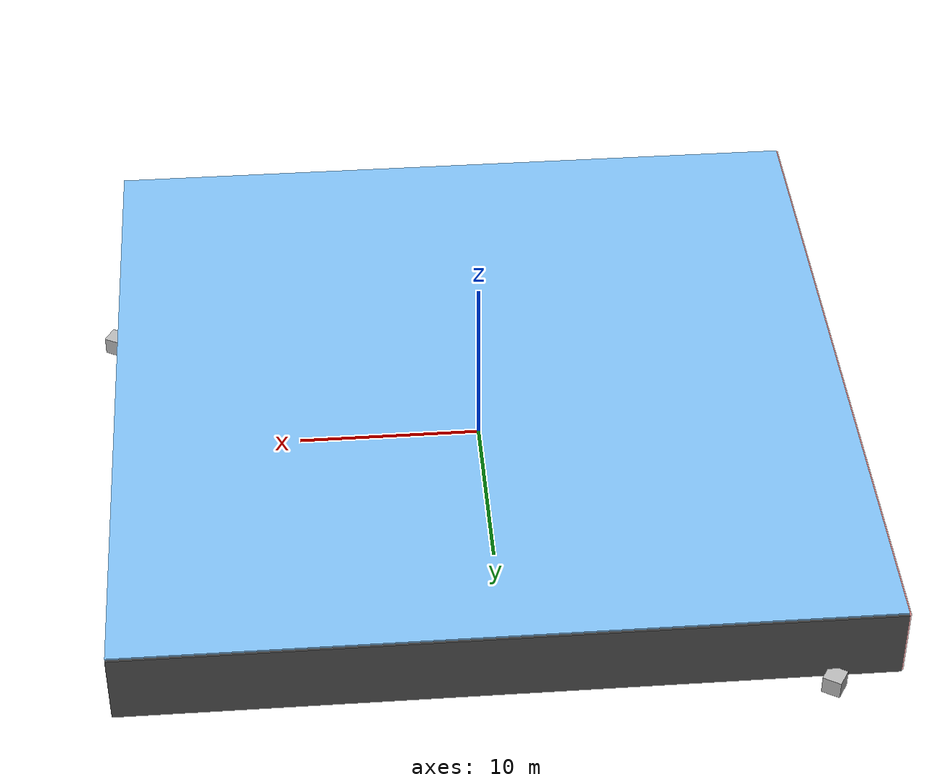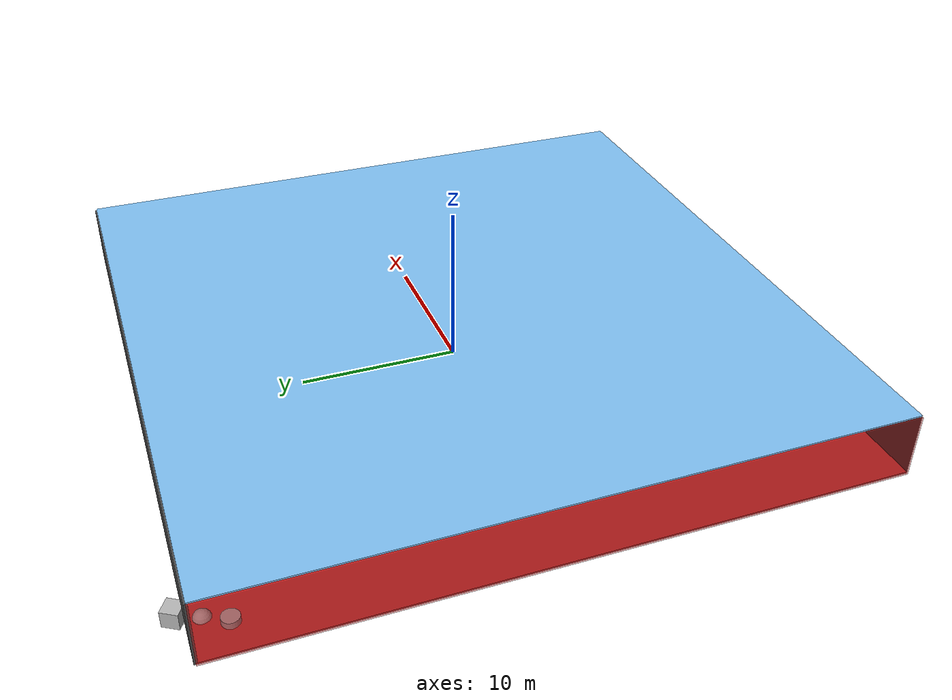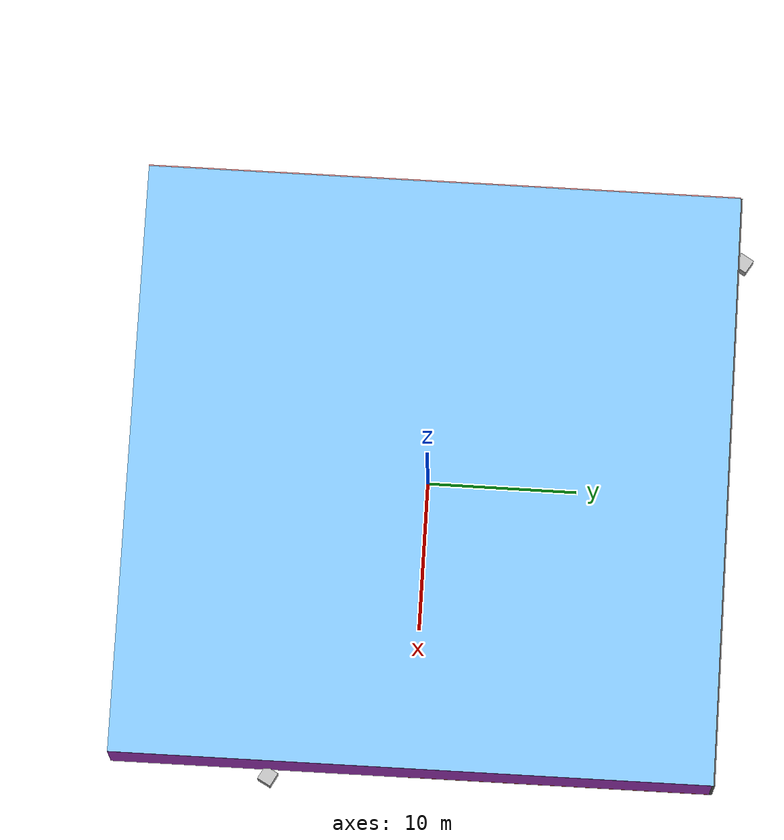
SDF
<sdf version="1.4">
 <world name="default">
  <physics type="ode">
   <max_step_size>0.001</max_step_size>
   <real_time_factor>1</real_time_factor>
   <real_time_update_rate>1000</real_time_update_rate>
   <gravity>0 0 -9.8</gravity>
  </physics>
  <scene><ambient>0.4 0.4 0.4 1</ambient><background>0.7 0.7 0.7 1</background><shadows>1</shadows></scene>
  <model name="Surrounding">
   <static>1</static>
   <link name="Ceiling">
    <collision name="Ceiling_Collision"><geometry><box><size>40 40 0.1</size></box></geometry></collision>
    <visual name="Ceiling_Visual">
     <geometry><box><size>40 40 0.1</size></box></geometry>
     <material>
      <script><uri>file://media/materials/scripts/gazebo.material</uri><name>Gazebo/SkyBlue</name></script>
     </material>
    </visual>
    <pose>0 0 4.05 0 0 0</pose>
   </link>
   <link name="Wall_South">
    <collision name="Wall_South_Collision">
     <geometry><box><size>40 0 4</size></box></geometry>
     <pose>0 0 2 0 -0 0</pose>
    </collision>
    <visual name="Wall_South_Visual">
     <pose>0 0 2 0 -0 0</pose>
     <geometry><box><size>40 0 4</size></box></geometry>
     <material>
      <script><uri>file://media/materials/scripts/gazebo.material</uri><name>Gazebo/FlatBlack</name></script>
     </material>
    </visual>
    <velocity_decay><linear>0</linear><angular>0</angular></velocity_decay>
    <pose>0 -20 0 0 -0 0</pose>
   </link>
   <link name="Wall_East">
    <collision name="Wall_21_Collision">
     <geometry><box><size>40 0 4</size></box></geometry>
     <pose>0 0 2 0 -0 0</pose>
    </collision>
    <visual name="Wall_21_Visual">
     <pose>0 0 2 0 -0 0</pose>
     <geometry><box><size>40 0 4</size></box></geometry>
     <material>
      <script><uri>file://media/materials/scripts/gazebo.material</uri><name>Gazebo/Purple</name></script>
     </material>
    </visual>
    <velocity_decay><linear>0</linear><angular>0</angular></velocity_decay>
    <pose>20 0 0 0 -0 1.5708</pose>
   </link>
   <link name="Wall_North">
    <collision name="Wall_22_Collision">
     <geometry><box><size>40 0.2 4</size></box></geometry>
     <pose>0 0 2 0 -0 0</pose>
    </collision>
    <visual name="Wall_22_Visual">
     <pose>0 0 2 0 -0 0</pose>
     <geometry><box><size>40 0.2 4</size></box></geometry>
     <material>
      <script><uri>file://media/materials/scripts/gazebo.material</uri><name>Gazebo/Road</name></script>
     </material>
    </visual>
    <velocity_decay><linear>0</linear><angular>0</angular></velocity_decay>
    <pose>0 20 0 0 -0 0</pose>
   </link>
   <link name="Wall_West">
    <collision name="Wall_23_Collision">
     <geometry><box><size>40 0.2 4</size></box></geometry>
     <pose>0 0 2 0 -0 0</pose>
    </collision>
    <visual name="Wall_23_Visual">
     <pose>0 0 2 0 -0 0</pose>
     <geometry><box><size>40 0.2 4</size></box></geometry>
     <material>
      <script><uri>file://media/materials/scripts/gazebo.material</uri><name>Gazebo/RedTransparent</name></script>
     </material>
    </visual>
    <velocity_decay><linear>0</linear><angular>0</angular></velocity_decay>
    <pose>-20 0 0 0 0 -1.5708</pose>
   </link>
   <link name="Ground_link">
    <collision name="collision">
     <pose>0 0 .05 0 -0 0</pose>
     <geometry><box><size>40 40 0.1</size></box></geometry>
    </collision>
    <visual name="visual">
     <pose>0 0 .05 0 -0 0</pose>
     <geometry><box><size>40 40 0.1</size></box></geometry>
     <material>
      <script><uri>file://media/materials/scripts/gazebo.material</uri><name>Gazebo/RedBright</name></script>
     </material>
    </visual>
   </link>
   <static>1</static>
  </model>
  <spherical_coordinates>
   <surface_model>EARTH_WGS84</surface_model>
   <latitude_deg>0</latitude_deg>
   <longitude_deg>0</longitude_deg>
   <elevation>0</elevation>
   <heading_deg>0</heading_deg>
  </spherical_coordinates>
  <light name="lightball_0" type="diffuse">
   <diffuse>0.8 0.8 0.8 1</diffuse>
   <specular>0.2 0.2 0.2 1</specular>
   <attenuation>
    <range>100</range>
    <constant>0.7</constant>
    <linear>0.01</linear>
    <quadratic>0.001</quadratic>
   </attenuation>
   <direction>-0.5 0.1 -0.9</direction>
   <pose>1.75545317458 -6.98891561888 2.99959195211 0 0 0</pose>
  </light>
  <light name="lightball_1" type="diffuse">
   <diffuse>0.8 0.8 0.8 1</diffuse>
   <specular>0.2 0.2 0.2 1</specular>
   <attenuation>
    <range>100</range>
    <constant>0.7</constant>
    <linear>0.01</linear>
    <quadratic>0.001</quadratic>
   </attenuation>
   <direction>-0.5 0.1 -0.9</direction>
   <pose>4.08337489634 -16.4697987147 0.7628072348 0 0 0</pose>
  </light>
  <include>
   <uri>model://textured_shapes</uri>
   <pose>-17.2571786528 19.2421158565 0 0 0 2.59614540984</pose>
  </include>
  <include>
   <uri>model://textured_shapes</uri>
   <pose>-14.2632372475 11.6902133046 0 0 0 2.29038281948</pose>
  </include>
  <include><uri>model://cabinet</uri><pose>-13.6020516978 16.2800123274 0 0 0 1.608902143</pose></include>
  <include><uri>model://table</uri><pose>-7.72672636907 -7.70290135 0 0 0 2.64997966866</pose></include>
  <include><uri>model://cabinet</uri><pose>-9.25422342413 17.5028668508 0 0 0 1.19201423799</pose></include>
  <include>
   <uri>model://textured_shapes</uri>
   <pose>-5.61844819993 -17.6921424757 0 0 0 1.97928604783</pose>
  </include>
  <include>
   <uri>model://textured_shapes</uri>
   <pose>-5.9125404705 -5.68072246737 0 0 0 1.84988528319</pose>
  </include>
  <include><uri>model://cabinet</uri><pose>-6.05455729869 0.846843779541 0 0 0 0.182590173259</pose></include>
  <include><uri>model://cabinet</uri><pose>-4.36415549893 12.0986323183 0 0 0 2.80877760821</pose></include>
  <include>
   <uri>model://textured_shapes</uri>
   <pose>-1.79622343812 -6.00015107916 0 0 0 2.34057590169</pose>
  </include>
  <include>
   <uri>model://textured_shapes</uri>
   <pose>0.472193987316 -10.4620851669 0 0 0 1.36606844978</pose>
  </include>
  <include>
   <uri>model://construction_cone</uri>
   <pose>1.41407162104 10.6554504535 0 0 0 2.56093593457</pose>
  </include>
  <include><uri>model://cabinet</uri><pose>4.13438555756 -18.6910306314 0 0 0 1.88213361538</pose></include>
  <include>
   <uri>model://robocup_3Dsim_goal</uri>
   <pose>10.1380715573 -13.7935823044 0 0 0 0.831646295117</pose>
  </include>
  <include>
   <uri>model://textured_shapes</uri>
   <pose>16.3741198732 -8.78216500633 0 0 0 2.91241053151</pose>
  </include>
  <include><uri>model://cabinet</uri><pose>15.1997304773 -4.47051639374 0 0 0 1.91799016972</pose></include>
  <include>
   <uri>model://textured_shapes</uri>
   <pose>19.1746777393 -8.76640218965 0 0 0 1.07245499144</pose>
  </include>
  <include>
   <uri>model://robocup_3Dsim_goal</uri>
   <pose>18.7078162697 1.00519643904 0 0 0 0.381620809919</pose>
  </include>
  <include><uri>model://cabinet</uri><pose>19.382731952 9.52143993215 0 0 0 3.04455673248</pose></include>
 </world>
</sdf>

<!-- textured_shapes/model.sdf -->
<sdf version="1.6">
  <model name="textured_shapes">
    <pose>0 0 0.5 0 0 0</pose>
    <link name="box">
      <pose>0 -1.5 0 0 0 0</pose>
      <collision name="collision">
        <geometry>
          <box>
            <size>1 1 1</size>
          </box>
        </geometry>
      </collision>
      <visual name="visual">
        <geometry>
          <box>
            <size>1 1 1</size>
          </box>
        </geometry>
        <material>
          <script>
            <uri>model://../model_source/models/textured_shapes/materials/scripts</uri>
            <uri>model://../model_source/models/textured_shapes/materials/textures</uri>
            <name>TexturedShape/Squares</name>
          </script>
        </material>
      </visual>
    </link>
    <link name="sphere">
      <collision name="collision">
        <geometry>
          <sphere>
            <radius>0.5</radius>
          </sphere>
        </geometry>
      </collision>
      <visual name="visual">
        <geometry>
          <sphere>
            <radius>0.5</radius>
          </sphere>
        </geometry>
        <material>
          <script>
            <uri>model://../model_source/models/textured_shapes/materials/scripts</uri>
            <uri>model://../model_source/models/textured_shapes/materials/textures</uri>
            <name>TexturedShape/Squares</name>
          </script>
        </material>
      </visual>
    </link>
    <link name="cylinder">
      <pose>0 1.5 0 0 0 0</pose>
      <collision name="collision">
        <geometry>
          <cylinder>
            <radius>0.5</radius>
            <length>1</length>
          </cylinder>
        </geometry>
      </collision>
      <visual name="visual">
        <geometry>
          <cylinder>
            <radius>0.5</radius>
            <length>1</length>
          </cylinder>
        </geometry>
        <material>
          <script>
            <uri>model://../model_source/models/textured_shapes/materials/scripts</uri>
            <uri>model://../model_source/models/textured_shapes/materials/textures</uri>
            <name>TexturedShape/Squares</name>
          </script>
        </material>
      </visual>
    </link>
  </model>
</sdf>

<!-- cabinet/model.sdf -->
<sdf version="1.5">
  <model name="cabinet">
    <static>true</static>
    <link name="cabinet_bottom_plate">
      <inertial>
        <pose>0 0 -1 0 0 0</pose>
        <inertia>
          <ixx>2.050000</ixx>
          <ixy>0</ixy>
          <ixz>0</ixz>
          <iyy>2.050000</iyy>
          <iyz>0</iyz>
          <izz>2.050000</izz>
        </inertia>
        <mass>25.000000</mass>
      </inertial>
      <collision name="cabinet_bottom_plate_geom">
        <pose>0 0 0.010000 0 0 0</pose>
        <geometry>
          <box>
            <size>0.450000 0.450000 0.020000</size>
          </box>
        </geometry>
      </collision>
      <visual name="cabinet_bottom_plate_geom_visual">
        <pose>0 0 0.010000 0 0 0</pose>
        <geometry>
          <box>
            <size>0.450000 0.450000 0.020000</size>
          </box>
        </geometry>
        <material>
          <script>
            <uri>model://media/materials/scripts/gazebo.material</uri>
            <name>Gazebo/Wood</name>
          </script>
        </material>
      </visual>
      <collision name="cabinet_bottom_plate_geom_cabinet_back_plate">
        <pose>0.235000 0 0.510000 0 0 0</pose>
        <geometry>
          <box>
            <size>0.020000 0.450000 1.020000</size>
          </box>
        </geometry>
      </collision>
      <visual name="cabinet_bottom_plate_geom_cabinet_back_plate_visual">
        <pose>0.235000 0 0.510000 0 0 0</pose>
        <geometry>
          <box>
            <size>0.020000 0.450000 1.020000</size>
          </box>
        </geometry>
        <material>
          <script>
            <uri>model://media/materials/scripts/gazebo.material</uri>
            <name>Gazebo/Wood</name>
          </script>
        </material>
      </visual>
      <collision name="cabinet_bottom_plate_geom_cabinet_left_plate">
        <pose>0 0.235000 0.510000 0 0 0</pose>
        <geometry>
          <box>
            <size>0.450000 0.020000 1.020000</size>
          </box>
        </geometry>
      </collision>
      <visual name="cabinet_bottom_plate_geom_cabinet_left_plate_visual">
        <pose>0 0.235000 0.510000 0 0 0</pose>
        <geometry>
          <box>
            <size>0.450000 0.020000 1.020000</size>
          </box>
        </geometry>
        <material>
          <script>
            <uri>model://media/materials/scripts/gazebo.material</uri>
            <name>Gazebo/Wood</name>
          </script>
        </material>
      </visual>
      <collision name="cabinet_bottom_plate_geom_cabinet_middle_plate">
        <pose>0 0 0.510000 0 0 0</pose>
        <geometry>
          <box>
            <size>0.450000 0.450000 0.020000</size>
          </box>
        </geometry>
      </collision>
      <visual name="cabinet_bottom_plate_geom_cabinet_middle_plate_visual">
        <pose>0 0 0.510000 0 0 0</pose>
        <geometry>
          <box>
            <size>0.450000 0.450000 0.020000</size>
          </box>
        </geometry>
        <material>
          <script>
            <uri>model://media/materials/scripts/gazebo.material</uri>
            <name>Gazebo/Wood</name>
          </script>
        </material>
      </visual>
      <collision name="cabinet_bottom_plate_geom_cabinet_right_plate">
        <pose>0 -0.235000 0.510000 0 0 0</pose>
        <geometry>
          <box>
            <size>0.450000 0.020000 1.020000</size>
          </box>
        </geometry>
      </collision>
      <visual name="cabinet_bottom_plate_geom_cabinet_right_plate_visual">
        <pose>0 -0.235000 0.510000 0 0 0</pose>
        <geometry>
          <box>
            <size>0.450000 0.020000 1.020000</size>
          </box>
        </geometry>
        <material>
          <script>
            <uri>model://media/materials/scripts/gazebo.material</uri>
            <name>Gazebo/Wood</name>
          </script>
        </material>
      </visual>
      <collision name="cabinet_bottom_plate_geom_cabinet_top_plate">
        <pose>0 0 1.010000 0 0 0</pose>
        <geometry>
          <box>
            <size>0.450000 0.450000 0.020000</size>
          </box>
        </geometry>
      </collision>
      <visual name="cabinet_bottom_plate_geom_cabinet_top_plate_visual">
        <pose>0 0 1.010000 0 0 0</pose>
        <geometry>
          <box>
            <size>0.450000 0.450000 0.020000</size>
          </box>
        </geometry>
        <material>
          <script>
            <uri>model://media/materials/scripts/gazebo.material</uri>
            <name>Gazebo/Wood</name>
          </script>
        </material>
      </visual>
    </link>
  </model>
</sdf>

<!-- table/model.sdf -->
<sdf version="1.5">
  <model name="table">
    <static>true</static>
    <link name="link">
      <collision name="surface">
        <pose>0 0 1.0 0 0 0</pose>
        <geometry>
          <box>
            <size>1.5 0.8 0.03</size>
          </box>
        </geometry>
        <surface>
          <friction>
            <ode>
              <mu>0.6</mu>
              <mu2>0.6</mu2>
            </ode>
          </friction>
        </surface>
      </collision>
      <visual name="visual1">
        <pose>0 0 1.0 0 0 0</pose>
        <geometry>
          <box>
            <size>1.5 0.8 0.03</size>
          </box>
        </geometry>
        <material>
          <script>
            <uri>model://media/materials/scripts/gazebo.material</uri>
            <name>Gazebo/Wood</name>
          </script>
        </material>
      </visual>
      <collision name="front_left_leg">
        <pose>0.68 0.38 0.5 0 0 0</pose>
        <geometry>
          <cylinder>
            <radius>0.02</radius>
            <length>1.0</length>
          </cylinder>
        </geometry>
      </collision>
      <visual name="front_left_leg">
        <pose>0.68 0.38 0.5 0 0 0</pose>
        <geometry>
          <cylinder>
            <radius>0.02</radius>
            <length>1.0</length>
          </cylinder>
        </geometry>
        <material>
          <script>
            <uri>model://media/materials/scripts/gazebo.material</uri>
            <name>Gazebo/Grey</name>
          </script>
        </material>
      </visual>
      <collision name="front_right_leg">
        <pose>0.68 -0.38 0.5 0 0 0</pose>
        <geometry>
          <cylinder>
            <radius>0.02</radius>
            <length>1.0</length>
          </cylinder>
        </geometry>
      </collision>
      <visual name="front_right_leg">
        <pose>0.68 -0.38 0.5 0 0 0</pose>
        <geometry>
          <cylinder>
            <radius>0.02</radius>
            <length>1.0</length>
          </cylinder>
        </geometry>
        <material>
          <script>
            <uri>model://media/materials/scripts/gazebo.material</uri>
            <name>Gazebo/Grey</name>
          </script>
        </material>
      </visual>
      <collision name="back_right_leg">
        <pose>-0.68 -0.38 0.5 0 0 0</pose>
        <geometry>
          <cylinder>
            <radius>0.02</radius>
            <length>1.0</length>
          </cylinder>
        </geometry>
      </collision>
      <visual name="back_right_leg">
        <pose>-0.68 -0.38 0.5 0 0 0</pose>
        <geometry>
          <cylinder>
            <radius>0.02</radius>
            <length>1.0</length>
          </cylinder>
        </geometry>
        <material>
          <script>
            <uri>model://media/materials/scripts/gazebo.material</uri>
            <name>Gazebo/Grey</name>
          </script>
        </material>
      </visual>
      <collision name="back_left_leg">
        <pose>-0.68 0.38 0.5 0 0 0</pose>
        <geometry>
          <cylinder>
            <radius>0.02</radius>
            <length>1.0</length>
          </cylinder>
        </geometry>
      </collision>
      <visual name="back_left_leg">
        <pose>-0.68 0.38 0.5 0 0 0</pose>
        <geometry>
          <cylinder>
            <radius>0.02</radius>
            <length>1.0</length>
          </cylinder>
        </geometry>
        <material>
          <script>
            <uri>model://media/materials/scripts/gazebo.material</uri>
            <name>Gazebo/Grey</name>
          </script>
        </material>
      </visual>
    </link>
  </model>
</sdf>

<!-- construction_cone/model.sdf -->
<sdf version="1.5">
  <model name="Construction Cone">
    <link name="link">
      <collision name="collision">
        <geometry>
          <mesh>
            <scale>10 10 10</scale>
            <uri>file://isr-testbed/construction_cone/meshes/construction_cone.dae</uri>
          </mesh>
        </geometry>
      </collision>
      <visual name="visual">
        <geometry>
          <mesh>
            <scale>10 10 10</scale>
            <uri>file://isr-testbed/construction_cone/meshes/construction_cone.dae</uri>
          </mesh>
        </geometry>
      </visual>
    </link>
  </model>
</sdf>

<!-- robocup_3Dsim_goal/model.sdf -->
<sdf version="1.5">
  <model name="robocup_3d_goal">
    <static>true</static>
    <link name="left_post">
      <pose>0 1.05 0.45 0 0 0</pose>
      <collision name="collision">
        <geometry>
          <cylinder>
            <radius>0.05</radius>
            <length>0.9</length>
          </cylinder>
        </geometry>
      </collision>
      <visual name="visual">
        <geometry>
          <cylinder>
            <radius>0.05</radius>
            <length>0.9</length>
          </cylinder>
        </geometry>
        <material>
          <script>
            <uri>file://media/materials/scripts/gazebo.material</uri>
            <name>Gazebo/ZincYellow</name>
          </script>
        </material>
      </visual>
    </link>
    <link name="left_support_horiz_lower">
      <pose>0.30 1.05 0.01 0 0 0</pose>
      <collision name="collision">
        <geometry>
          <box>
            <size>0.50 0.02 0.02</size>
          </box>
        </geometry>
      </collision>
      <visual name="visual">
        <geometry>
          <box>
            <size>0.50 0.02 0.02</size>
          </box>
        </geometry>
        <material>
          <script>
            <uri>file://media/materials/scripts/gazebo.material</uri>
            <name>Gazebo/White</name>
          </script>
        </material>
      </visual>
    </link>
    <link name="left_support_horiz_upper">
      <pose>0.30 1.05 0.79 0 0 0</pose>
      <collision name="collision">
        <geometry>
          <box>
            <size>0.50 0.02 0.02</size>
          </box>
        </geometry>
      </collision>
      <visual name="visual">
        <geometry>
          <box>
            <size>0.50 0.02 0.02</size>
          </box>
        </geometry>
        <material>
          <script>
            <uri>file://media/materials/scripts/gazebo.material</uri>
            <name>Gazebo/White</name>
          </script>
        </material>
      </visual>
    </link>
    <link name="left_support_vertical">
      <pose>0.56 1.05 0.4 0 1.5708 0</pose>
      <collision name="collision">
        <geometry>
          <box>
            <size>0.80 0.02 0.02</size>
          </box>
        </geometry>
      </collision>
      <visual name="visual">
        <geometry>
          <box>
            <size>0.80 0.02 0.02</size>
          </box>
        </geometry>
        <material>
          <script>
            <uri>file://media/materials/scripts/gazebo.material</uri>
            <name>Gazebo/White</name>
          </script>
        </material>
      </visual>
    </link>
    <link name="right_support_horiz_lower">
      <pose>0.30 -1.05 0.01 0 0 0</pose>
      <collision name="collision">
        <geometry>
          <box>
            <size>0.50 0.02 0.02</size>
          </box>
        </geometry>
      </collision>
      <visual name="visual">
        <geometry>
          <box>
            <size>0.50 0.02 0.02</size>
          </box>
        </geometry>
        <material>
          <script>
            <uri>file://media/materials/scripts/gazebo.material</uri>
            <name>Gazebo/White</name>
          </script>
        </material>
      </visual>
    </link>
    <link name="right_support_horiz_upper">
      <pose>0.30 -1.05 0.79 0 0 0</pose>
      <collision name="collision">
        <geometry>
          <box>
            <size>0.50 0.02 0.02</size>
          </box>
        </geometry>
      </collision>
      <visual name="visual">
        <geometry>
          <box>
            <size>0.50 0.02 0.02</size>
          </box>
        </geometry>
        <material>
          <script>
            <uri>file://media/materials/scripts/gazebo.material</uri>
            <name>Gazebo/White</name>
          </script>
        </material>
      </visual>
    </link>
    <link name="right_support_vertical">
      <pose>0.56 -1.05 0.4 0 1.5708 0</pose>
      <collision name="collision">
        <geometry>
          <box>
            <size>0.80 0.02 0.02</size>
          </box>
        </geometry>
      </collision>
      <visual name="visual">
        <geometry>
          <box>
            <size>0.80 0.02 0.02</size>
          </box>
        </geometry>
        <material>
          <script>
            <uri>file://media/materials/scripts/gazebo.material</uri>
            <name>Gazebo/White</name>
          </script>
        </material>
      </visual>
    </link>
    <link name="center_support_horiz_lower">
      <pose>0.56 0 0.01 0 1.5708 0</pose>
      <collision name="collision">
        <geometry>
          <box>
            <size>0.02 2.08 0.02</size>
          </box>
        </geometry>
      </collision>
      <visual name="visual">
        <geometry>
          <box>
            <size>0.02 2.08 0.02</size>
          </box>
        </geometry>
        <material>
          <script>
            <uri>file://media/materials/scripts/gazebo.material</uri>
            <name>Gazebo/White</name>
          </script>
        </material>
      </visual>
    </link>
    <link name="center_support_horiz_upper">
      <pose>0.56 0 0.79 0 1.5708 0</pose>
      <collision name="collision">
        <geometry>
          <box>
            <size>0.02 2.08 0.02</size>
          </box>
        </geometry>
      </collision>
      <visual name="visual">
        <geometry>
          <box>
            <size>0.02 2.08 0.02</size>
          </box>
        </geometry>
        <material>
          <script>
            <uri>file://media/materials/scripts/gazebo.material</uri>
            <name>Gazebo/White</name>
          </script>
        </material>
      </visual>
    </link>
    <link name="right_post">
      <pose>0 -1.05 0.45 0 0 0</pose>
      <collision name="collision">
        <geometry>
          <cylinder>
            <radius>0.05</radius>
            <length>0.9</length>
          </cylinder>
        </geometry>
      </collision>
      <visual name="visual">
        <geometry>
          <cylinder>
            <radius>0.05</radius>
            <length>0.9</length>
          </cylinder>
        </geometry>
        <material>
          <script>
            <uri>file://media/materials/scripts/gazebo.material</uri>
            <name>Gazebo/ZincYellow</name>
          </script>
        </material>
      </visual>
    </link>
    <link name="crossbar">
      <pose>0 0 0.85 1.57 1.57 0</pose>
      <collision name="collision">
        <geometry>
          <cylinder>
            <radius>0.05</radius>
            <length>2.0</length>
          </cylinder>
        </geometry>
      </collision>
      <visual name="visual">
        <geometry>
          <cylinder>
            <radius>0.05</radius>
            <length>2.0</length>
          </cylinder>
        </geometry>
        <material>
          <script>
            <uri>file://media/materials/scripts/gazebo.material</uri>
            <name>Gazebo/ZincYellow</name>
          </script>
        </material>
      </visual>
    </link>
    <link name="center_net">
      <pose>0.56 0 0.40 0 0 0</pose>
      <collision name="collision">
        <geometry>
          <box>
            <size>0.01 2.1 0.80</size>
          </box>
        </geometry>
      </collision>
      <visual name="visual">
        <geometry>
          <box>
            <size>0.01 2.1 0.80</size>
          </box>
        </geometry>
        <material>
          <script>
            <uri>model://../model_source/models/robocup09_spl_field/materials/scripts/</uri>
            <uri>model://../model_source/models/robocup09_spl_field/materials/textures/</uri>
            <name>RoboCup/Net</name>
          </script>
        </material>
      </visual>
    </link>
    <link name="left_net">
      <pose>0.30 1.05 0.40 0 0 0</pose>
      <collision name="collision">
        <geometry>
          <box>
            <size>0.50 0.01 0.76</size>
          </box>
        </geometry>
      </collision>
      <visual name="visual">
        <geometry>
          <box>
            <size>0.50 0.01 0.76</size>
          </box>
        </geometry>
        <material>
          <script>
            <uri>model://../model_source/models/robocup09_spl_field/materials/scripts/</uri>
            <uri>model://../model_source/models/robocup09_spl_field/materials/textures/</uri>
            <name>RoboCup/Net</name>
          </script>
        </material>
      </visual>
    </link>
    <link name="right_net">
      <pose>0.30 -1.05 0.40 0 0 0</pose>
      <collision name="collision">
        <geometry>
          <box>
            <size>0.50 0.01 0.76</size>
          </box>
        </geometry>
      </collision>
      <visual name="visual">
        <geometry>
          <box>
            <size>0.50 0.01 0.76</size>
          </box>
        </geometry>
        <material>
          <script>
            <uri>model://../model_source/models/robocup09_spl_field/materials/scripts/</uri>
            <uri>model://../model_source/models/robocup09_spl_field/materials/textures/</uri>
            <name>RoboCup/Net</name>
          </script>
        </material>
      </visual>
    </link>
  </model>
</sdf>
